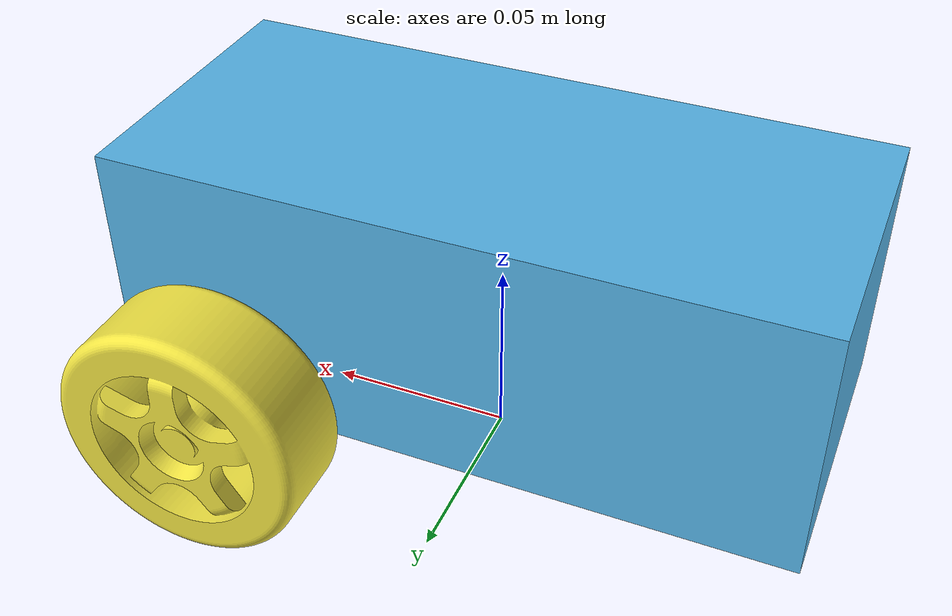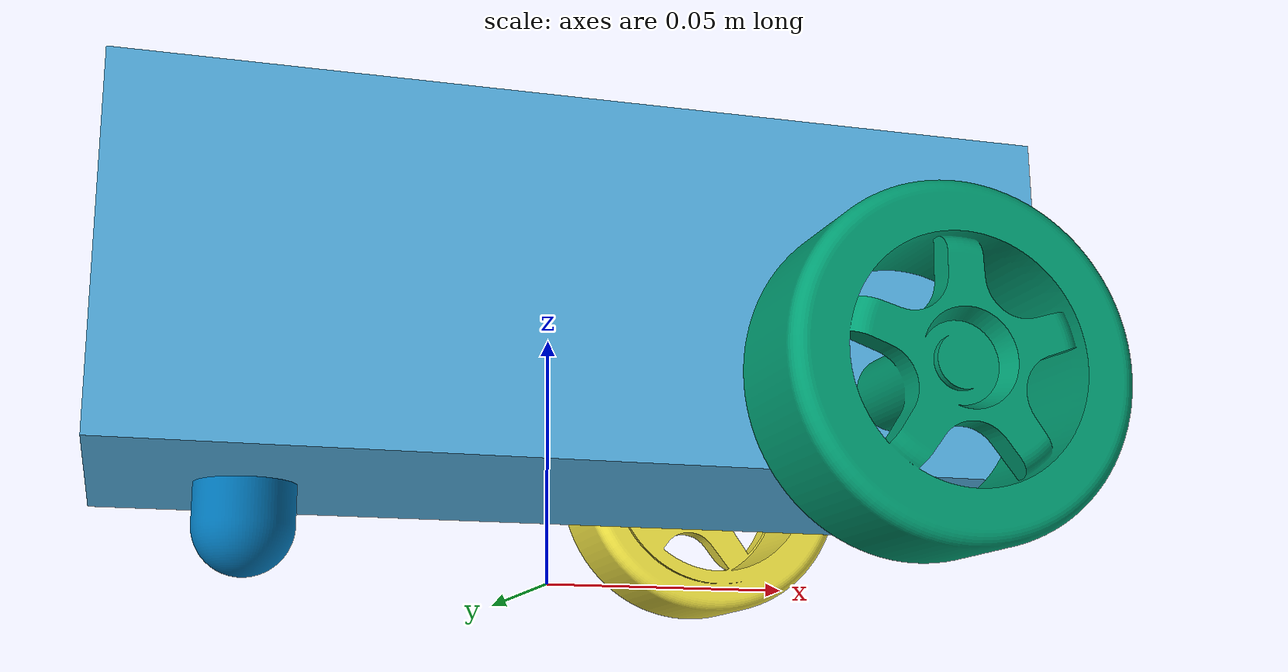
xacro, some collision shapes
<?xml version="1.0"?>

<robot xmlns:xacro="http://www.ros.org/wiki/xacro" name="simplerover">

    <xacro:include filename="$(find my_rover_description)/urdf/rover_gazebo.xacro" />

    <link name="base_footprint" />

    <link name="base_link">

        <inertial>
            <origin xyz="0 0 0.03" rpy="0 0 0"/>  <!-- aligned with collision center -->
            <mass value="0.6"/>
            <inertia
                ixx="0.00033483" ixy="0.0" ixz="0.0"
                iyy="0.00024003" iyz="0.0"
                izz="0.000294"/>
        </inertial>

        <collision>
            <origin rpy="0 0 0" xyz="0 0 0.03" />
            <geometry>
                <box size="0.18 0.08 0.069" />
            </geometry>
        </collision>
        <visual>
            <origin rpy="0 0 0" xyz="0 0 0" />
            <geometry>
                <mesh filename="package://my_rover_description/meshes/simple_rover_base_frame.stl" />
            </geometry>
        </visual>
    </link>

    <joint name="base_joint" type="fixed">
        <parent link="base_footprint" />
        <child link="base_link" />
        <origin rpy="0 0 0" xyz="0 0 0.02249" />
    </joint>

    <link name="right_wheel">

        <inertial>
            <origin xyz="0 0 0" rpy="0 0 0"/>
            <mass value="0.379"/>
            <inertia
                ixx="0.000151871664" ixy="0.0" ixz="0.0"
                iyy="0.000260784995" iyz="0.0"
                izz="0.000151870539"/>
        </inertial>

        <collision>
            <origin xyz="0 0 0" rpy="0 0 0" />
            <geometry>
                <sphere radius="0.03250" />
            </geometry>
        </collision>

        <visual>
            <origin rpy="0 0 0" xyz="0 0 0" />
            <geometry>
                <mesh filename="package://my_rover_description/meshes/right_wheel.stl" />
            </geometry>
        </visual>
    </link>

    <joint name="right_wheel_joint" type="continuous">
        <parent link="base_link" />
        <child link="right_wheel" />
        <axis xyz="0 1 0" />
        <origin rpy="0 0 0" xyz="0.055 -0.07400 0.010" />
    </joint>

     <link name="left_wheel">

        <inertial>
            <origin xyz="0 0 0" rpy="0 0 3.14"/>
            <mass value="0.379"/>
            <inertia
                ixx="0.000151871664" ixy="0.0" ixz="0.0"
                iyy="0.000260784995" iyz="0.0"
                izz="0.000151870539"/>
        </inertial>

        <collision>
            <origin xyz="0 0 0" rpy="0 0 3.14" />
            <geometry>
                <sphere radius="0.03250" />
            </geometry>
        </collision>

        <visual>
            <origin rpy="0 0 3.14" xyz="0 0 0" />
            <geometry>
                <mesh filename="package://my_rover_description/meshes/left_wheel.stl" />
            </geometry>
        </visual>
    </link>

    <joint name="left_wheel_joint" type="continuous">
        <parent link="base_link" />
        <child link="left_wheel" />
        <axis xyz="0 1 0" />
        <origin rpy="0 0 0" xyz="0.055 0.07400 0.010" />
    </joint>

    <link name="caster_wheel">

        <inertial>
            <origin xyz="0 0 0" rpy="0 0 0"/>
            <mass value="0.048169"/>
            <inertia
                ixx="0.000002721" ixy="0.0" ixz="0.0"
                iyy="0.000002721" iyz="0.0"
                izz="0.000002240877"/>
        </inertial>

        <collision>
            <origin xyz="0 0 0" rpy="0 0 0" />
            <geometry>
                <sphere radius="0.022499" />
            </geometry>
        </collision>
        <visual>
            <origin rpy="0 0 0" xyz="0.06 0 0" />
            <geometry>
                <mesh filename="package://my_rover_description/meshes/caster.stl" />
            </geometry>
        </visual>
    </link>

    <joint name="caster_joint" type="fixed">
        <parent link="base_link" />
        <child link="caster_wheel" />
        <origin rpy="0 0 0" xyz="-0.060 0 0" />
    </joint>

</robot>
